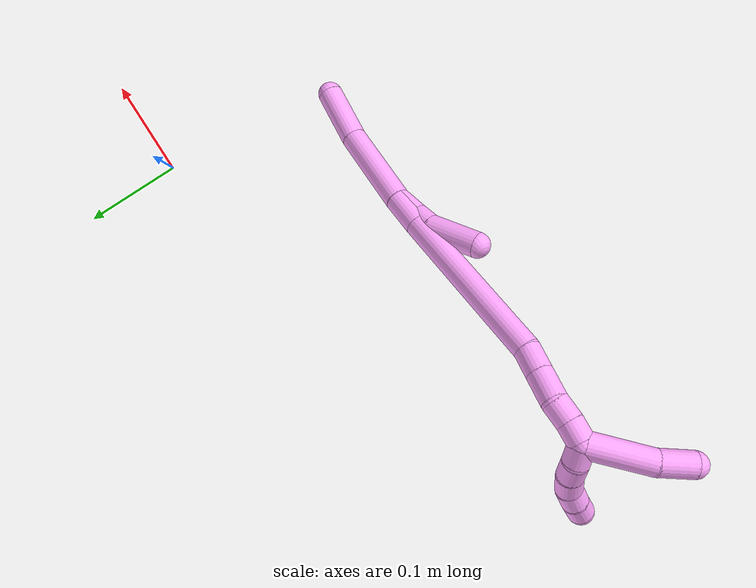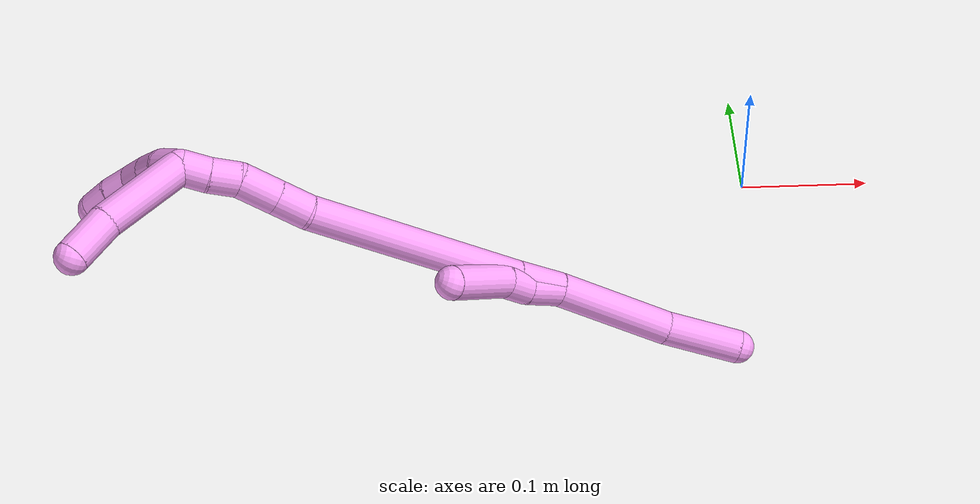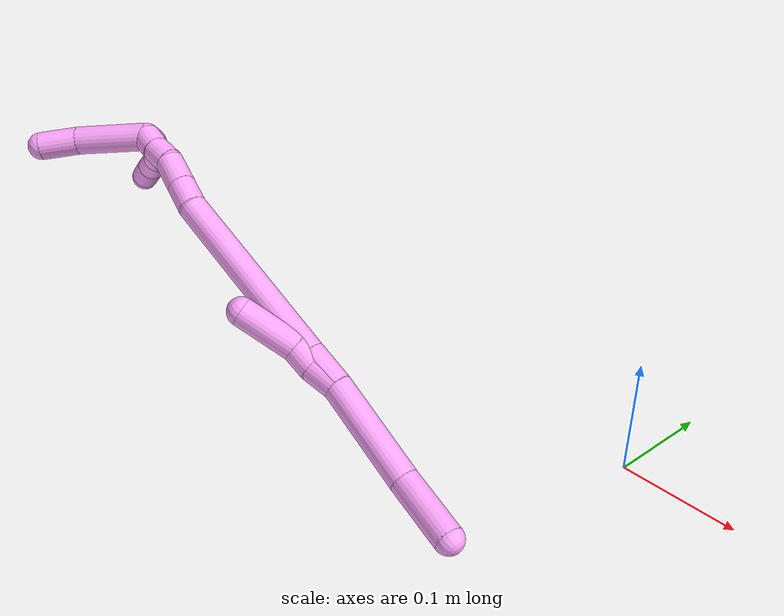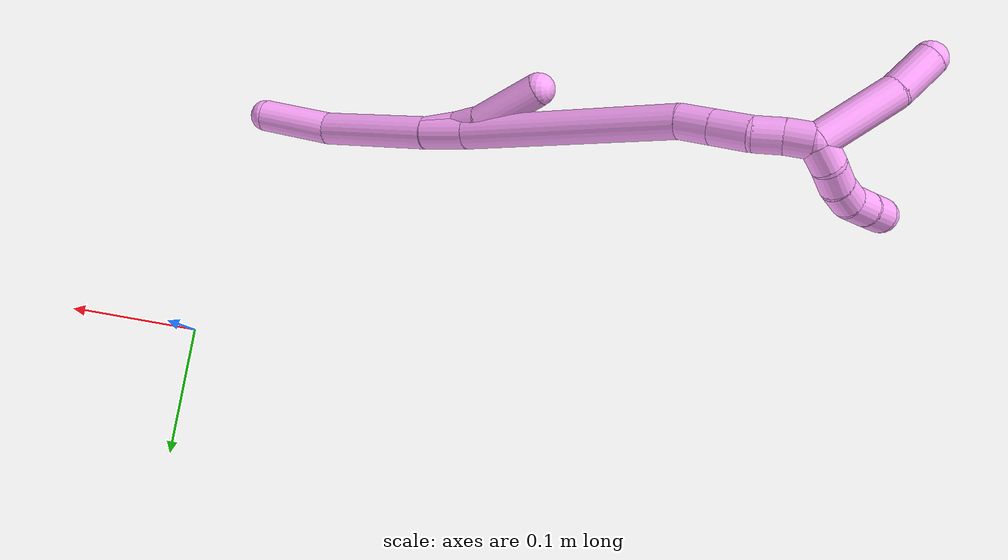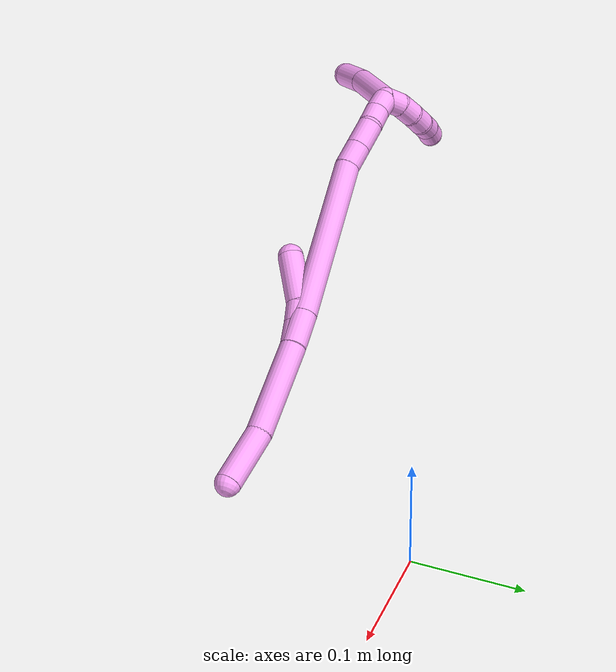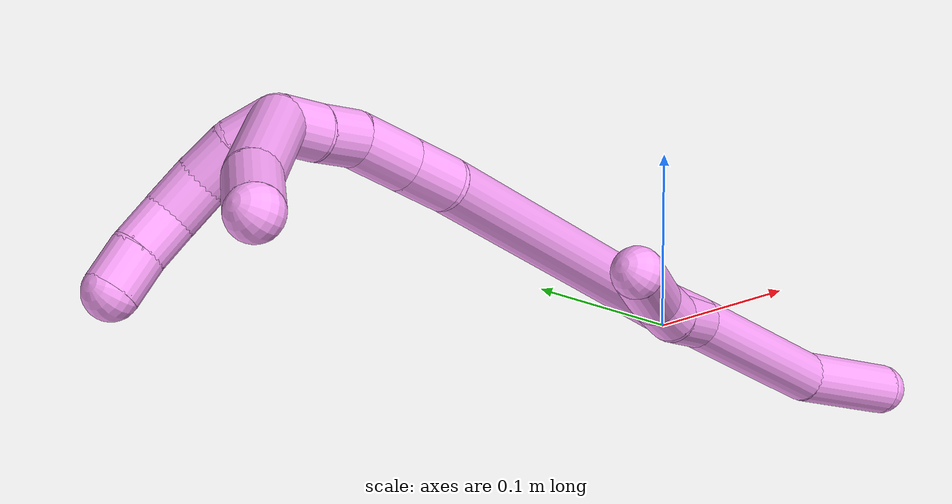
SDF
<sdf version="1.7">
 <world name="default">
  <model name="4">
   <static>0</static>
   <link name="4">
    <collision name="collision-cylinder-e_1_2_8">
     <pose>0.00142 -0.001955 -0.046011 3.09912 0.030832 1.25586</pose>
     <geometry><cylinder><radius>0.0125</radius><length>0.092149</length></cylinder></geometry>
     <surface>
      <friction><ode><mu>1.16</mu><mu2>1.16</mu2><slip1>0</slip1><slip2>0</slip2></ode></friction>
      <contact><ode><kp>1e+06</kp><kd>1</kd><max_vel>0</max_vel><min_depth>0.001</min_depth></ode></contact>
     </surface>
    </collision>
    <visual name="visual-cylinder-e_1_2_8">
     <pose>0.00142 -0.001955 -0.046011 3.09912 0.030832 1.25586</pose>
     <geometry><cylinder><radius>0.0125</radius><length>0.092149</length></cylinder></geometry>
     <material><ambient>1 0.65098 0.996078 1</ambient></material>
    </visual>
    <collision name="collision-cylinder-e_2_8_6">
     <pose>0.009632 -0.002646 -0.120111 -3.09662 0.23701 -2.76824</pose>
     <geometry><cylinder><radius>0.0125</radius><length>0.057851</length></cylinder></geometry>
     <surface>
      <friction><ode><mu>1.16</mu><mu2>1.16</mu2><slip1>0</slip1><slip2>0</slip2></ode></friction>
      <contact><ode><kp>1e+06</kp><kd>1</kd><max_vel>0</max_vel><min_depth>0.001</min_depth></ode></contact>
     </surface>
    </collision>
    <visual name="visual-cylinder-e_2_8_6">
     <pose>0.009632 -0.002646 -0.120111 -3.09662 0.23701 -2.76824</pose>
     <geometry><cylinder><radius>0.0125</radius><length>0.057851</length></cylinder></geometry>
     <material><ambient>1 0.65098 0.996078 1</ambient></material>
    </visual>
    <collision name="collision-cylinder-e_1_2_9">
     <pose>0.000574 -0.002991 0.012749 0.230468 0.043839 0.005075</pose>
     <geometry><cylinder><radius>0.0125</radius><length>0.026216</length></cylinder></geometry>
     <surface>
      <friction><ode><mu>1.16</mu><mu2>1.16</mu2><slip1>0</slip1><slip2>0</slip2></ode></friction>
      <contact><ode><kp>1e+06</kp><kd>1</kd><max_vel>0</max_vel><min_depth>0.001</min_depth></ode></contact>
     </surface>
    </collision>
    <visual name="visual-cylinder-e_1_2_9">
     <pose>0.000574 -0.002991 0.012749 0.230468 0.043839 0.005075</pose>
     <geometry><cylinder><radius>0.0125</radius><length>0.026216</length></cylinder></geometry>
     <material><ambient>1 0.65098 0.996078 1</ambient></material>
    </visual>
    <collision name="collision-cylinder-e_2_9_10">
     <pose>0.003338 -0.00594 0.035855 -0.004108 0.208288 -0.000429</pose>
     <geometry><cylinder><radius>0.0125</radius><length>0.021172</length></cylinder></geometry>
     <surface>
      <friction><ode><mu>1.16</mu><mu2>1.16</mu2><slip1>0</slip1><slip2>0</slip2></ode></friction>
      <contact><ode><kp>1e+06</kp><kd>1</kd><max_vel>0</max_vel><min_depth>0.001</min_depth></ode></contact>
     </surface>
    </collision>
    <visual name="visual-cylinder-e_2_9_10">
     <pose>0.003338 -0.00594 0.035855 -0.004108 0.208288 -0.000429</pose>
     <geometry><cylinder><radius>0.0125</radius><length>0.021172</length></cylinder></geometry>
     <material><ambient>1 0.65098 0.996078 1</ambient></material>
    </visual>
    <collision name="collision-cylinder-e_3_10_5">
     <pose>0.015367 -0.012011 0.06983 0.253291 0.383385 0.049412</pose>
     <geometry><cylinder><radius>0.0125</radius><length>0.052612</length></cylinder></geometry>
     <surface>
      <friction><ode><mu>1.16</mu><mu2>1.16</mu2><slip1>0</slip1><slip2>0</slip2></ode></friction>
      <contact><ode><kp>1e+06</kp><kd>1</kd><max_vel>0</max_vel><min_depth>0.001</min_depth></ode></contact>
     </surface>
    </collision>
    <visual name="visual-cylinder-e_3_10_5">
     <pose>0.015367 -0.012011 0.06983 0.253291 0.383385 0.049412</pose>
     <geometry><cylinder><radius>0.0125</radius><length>0.052612</length></cylinder></geometry>
     <material><ambient>1 0.65098 0.996078 1</ambient></material>
    </visual>
    <collision name="collision-cylinder-e_1_2_11">
     <pose>-0.000282 -0.000469 0.017835 0.026275 -0.015799 -0.000208</pose>
     <geometry><cylinder><radius>0.0125</radius><length>0.035687</length></cylinder></geometry>
     <surface>
      <friction><ode><mu>1.16</mu><mu2>1.16</mu2><slip1>0</slip1><slip2>0</slip2></ode></friction>
      <contact><ode><kp>1e+06</kp><kd>1</kd><max_vel>0</max_vel><min_depth>0.001</min_depth></ode></contact>
     </surface>
    </collision>
    <visual name="visual-cylinder-e_1_2_11">
     <pose>-0.000282 -0.000469 0.017835 0.026275 -0.015799 -0.000208</pose>
     <geometry><cylinder><radius>0.0125</radius><length>0.035687</length></cylinder></geometry>
     <material><ambient>1 0.65098 0.996078 1</ambient></material>
    </visual>
    <collision name="collision-cylinder-e_2_11_12">
     <pose>0.002994 -0.000865 0.120218 -0.000858 0.04206 -1.8e-05</pose>
     <geometry><cylinder><radius>0.0125</radius><length>0.169244</length></cylinder></geometry>
     <surface>
      <friction><ode><mu>1.16</mu><mu2>1.16</mu2><slip1>0</slip1><slip2>0</slip2></ode></friction>
      <contact><ode><kp>1e+06</kp><kd>1</kd><max_vel>0</max_vel><min_depth>0.001</min_depth></ode></contact>
     </surface>
    </collision>
    <visual name="visual-cylinder-e_2_11_12">
     <pose>0.002994 -0.000865 0.120218 -0.000858 0.04206 -1.8e-05</pose>
     <geometry><cylinder><radius>0.0125</radius><length>0.169244</length></cylinder></geometry>
     <material><ambient>1 0.65098 0.996078 1</ambient></material>
    </visual>
    <collision name="collision-cylinder-e_3_12_13">
     <pose>0.005004 0.000887 0.217001 -0.136423 -0.124732 0.008532</pose>
     <geometry><cylinder><radius>0.0125</radius><length>0.024896</length></cylinder></geometry>
     <surface>
      <friction><ode><mu>1.16</mu><mu2>1.16</mu2><slip1>0</slip1><slip2>0</slip2></ode></friction>
      <contact><ode><kp>1e+06</kp><kd>1</kd><max_vel>0</max_vel><min_depth>0.001</min_depth></ode></contact>
     </surface>
    </collision>
    <visual name="visual-cylinder-e_3_12_13">
     <pose>0.005004 0.000887 0.217001 -0.136423 -0.124732 0.008532</pose>
     <geometry><cylinder><radius>0.0125</radius><length>0.024896</length></cylinder></geometry>
     <material><ambient>1 0.65098 0.996078 1</ambient></material>
    </visual>
    <collision name="collision-cylinder-e_4_13_14">
     <pose>0.001695 0.004485 0.243214 -0.136397 -0.124145 0.00849</pose>
     <geometry><cylinder><radius>0.0125</radius><length>0.028434</length></cylinder></geometry>
     <surface>
      <friction><ode><mu>1.16</mu><mu2>1.16</mu2><slip1>0</slip1><slip2>0</slip2></ode></friction>
      <contact><ode><kp>1e+06</kp><kd>1</kd><max_vel>0</max_vel><min_depth>0.001</min_depth></ode></contact>
     </surface>
    </collision>
    <visual name="visual-cylinder-e_4_13_14">
     <pose>0.001695 0.004485 0.243214 -0.136397 -0.124145 0.00849</pose>
     <geometry><cylinder><radius>0.0125</radius><length>0.028434</length></cylinder></geometry>
     <material><ambient>1 0.65098 0.996078 1</ambient></material>
    </visual>
    <collision name="collision-cylinder-e_5_14_15">
     <pose>-0.001798 0.004798 0.267603 0.15304 -0.162928 -0.012519</pose>
     <geometry><cylinder><radius>0.0125</radius><length>0.021355</length></cylinder></geometry>
     <surface>
      <friction><ode><mu>1.16</mu><mu2>1.16</mu2><slip1>0</slip1><slip2>0</slip2></ode></friction>
      <contact><ode><kp>1e+06</kp><kd>1</kd><max_vel>0</max_vel><min_depth>0.001</min_depth></ode></contact>
     </surface>
    </collision>
    <visual name="visual-cylinder-e_5_14_15">
     <pose>-0.001798 0.004798 0.267603 0.15304 -0.162928 -0.012519</pose>
     <geometry><cylinder><radius>0.0125</radius><length>0.021355</length></cylinder></geometry>
     <material><ambient>1 0.65098 0.996078 1</ambient></material>
    </visual>
    <collision name="collision-cylinder-e_6_15_1">
     <pose>-0.005664 0.002875 0.287977 0.031775 -0.210955 -0.003364</pose>
     <geometry><cylinder><radius>0.0125</radius><length>0.020385</length></cylinder></geometry>
     <surface>
      <friction><ode><mu>1.16</mu><mu2>1.16</mu2><slip1>0</slip1><slip2>0</slip2></ode></friction>
      <contact><ode><kp>1e+06</kp><kd>1</kd><max_vel>0</max_vel><min_depth>0.001</min_depth></ode></contact>
     </surface>
    </collision>
    <visual name="visual-cylinder-e_6_15_1">
     <pose>-0.005664 0.002875 0.287977 0.031775 -0.210955 -0.003364</pose>
     <geometry><cylinder><radius>0.0125</radius><length>0.020385</length></cylinder></geometry>
     <material><ambient>1 0.65098 0.996078 1</ambient></material>
    </visual>
    <collision name="collision-cylinder-e_1_1_16">
     <pose>-0.002165 -0.022247 0.318403 0.88098 0.173408 0.081901</pose>
     <geometry><cylinder><radius>0.0125</radius><length>0.065293</length></cylinder></geometry>
     <surface>
      <friction><ode><mu>1.16</mu><mu2>1.16</mu2><slip1>0</slip1><slip2>0</slip2></ode></friction>
      <contact><ode><kp>1e+06</kp><kd>1</kd><max_vel>0</max_vel><min_depth>0.001</min_depth></ode></contact>
     </surface>
    </collision>
    <visual name="visual-cylinder-e_1_1_16">
     <pose>-0.002165 -0.022247 0.318403 0.88098 0.173408 0.081901</pose>
     <geometry><cylinder><radius>0.0125</radius><length>0.065293</length></cylinder></geometry>
     <material><ambient>1 0.65098 0.996078 1</ambient></material>
    </visual>
    <collision name="collision-cylinder-e_2_16_4">
     <pose>0.008463 -0.061265 0.34748 1.02604 0.291958 0.165269</pose>
     <geometry><cylinder><radius>0.0125</radius><length>0.034707</length></cylinder></geometry>
     <surface>
      <friction><ode><mu>1.16</mu><mu2>1.16</mu2><slip1>0</slip1><slip2>0</slip2></ode></friction>
      <contact><ode><kp>1e+06</kp><kd>1</kd><max_vel>0</max_vel><min_depth>0.001</min_depth></ode></contact>
     </surface>
    </collision>
    <visual name="visual-cylinder-e_2_16_4">
     <pose>0.008463 -0.061265 0.34748 1.02604 0.291958 0.165269</pose>
     <geometry><cylinder><radius>0.0125</radius><length>0.034707</length></cylinder></geometry>
     <material><ambient>1 0.65098 0.996078 1</ambient></material>
    </visual>
    <collision name="collision-cylinder-e_1_1_17">
     <pose>-0.017333 0.001198 0.300629 0.468042 -1.26454 -0.3458</pose>
     <geometry><cylinder><radius>0.0125</radius><length>0.02</length></cylinder></geometry>
     <surface>
      <friction><ode><mu>1.16</mu><mu2>1.16</mu2><slip1>0</slip1><slip2>0</slip2></ode></friction>
      <contact><ode><kp>1e+06</kp><kd>1</kd><max_vel>0</max_vel><min_depth>0.001</min_depth></ode></contact>
     </surface>
    </collision>
    <visual name="visual-cylinder-e_1_1_17">
     <pose>-0.017333 0.001198 0.300629 0.468042 -1.26454 -0.3458</pose>
     <geometry><cylinder><radius>0.0125</radius><length>0.02</length></cylinder></geometry>
     <material><ambient>1 0.65098 0.996078 1</ambient></material>
    </visual>
    <collision name="collision-cylinder-e_2_17_18">
     <pose>-0.036253 -0.003433 0.304424 1.24539 -1.21835 -0.928782</pose>
     <geometry><cylinder><radius>0.0125</radius><length>0.02</length></cylinder></geometry>
     <surface>
      <friction><ode><mu>1.16</mu><mu2>1.16</mu2><slip1>0</slip1><slip2>0</slip2></ode></friction>
      <contact><ode><kp>1e+06</kp><kd>1</kd><max_vel>0</max_vel><min_depth>0.001</min_depth></ode></contact>
     </surface>
    </collision>
    <visual name="visual-cylinder-e_2_17_18">
     <pose>-0.036253 -0.003433 0.304424 1.24539 -1.21835 -0.928782</pose>
     <geometry><cylinder><radius>0.0125</radius><length>0.02</length></cylinder></geometry>
     <material><ambient>1 0.65098 0.996078 1</ambient></material>
    </visual>
    <collision name="collision-cylinder-e_3_18_19">
     <pose>-0.054171 -0.011528 0.307505 1.18165 -1.02235 -0.719693</pose>
     <geometry><cylinder><radius>0.0125</radius><length>0.02</length></cylinder></geometry>
     <surface>
      <friction><ode><mu>1.16</mu><mu2>1.16</mu2><slip1>0</slip1><slip2>0</slip2></ode></friction>
      <contact><ode><kp>1e+06</kp><kd>1</kd><max_vel>0</max_vel><min_depth>0.001</min_depth></ode></contact>
     </surface>
    </collision>
    <visual name="visual-cylinder-e_3_18_19">
     <pose>-0.054171 -0.011528 0.307505 1.18165 -1.02235 -0.719693</pose>
     <geometry><cylinder><radius>0.0125</radius><length>0.02</length></cylinder></geometry>
     <material><ambient>1 0.65098 0.996078 1</ambient></material>
    </visual>
    <collision name="collision-cylinder-e_4_19_20">
     <pose>-0.06932 -0.022766 0.313367 1.02638 -0.722888 -0.419829</pose>
     <geometry><cylinder><radius>0.0125</radius><length>0.02</length></cylinder></geometry>
     <surface>
      <friction><ode><mu>1.16</mu><mu2>1.16</mu2><slip1>0</slip1><slip2>0</slip2></ode></friction>
      <contact><ode><kp>1e+06</kp><kd>1</kd><max_vel>0</max_vel><min_depth>0.001</min_depth></ode></contact>
     </surface>
    </collision>
    <visual name="visual-cylinder-e_4_19_20">
     <pose>-0.06932 -0.022766 0.313367 1.02638 -0.722888 -0.419829</pose>
     <geometry><cylinder><radius>0.0125</radius><length>0.02</length></cylinder></geometry>
     <material><ambient>1 0.65098 0.996078 1</ambient></material>
    </visual>
    <collision name="collision-cylinder-e_5_20_3">
     <pose>-0.082355 -0.036269 0.320176 1.17942 -0.696941 -0.47694</pose>
     <geometry><cylinder><radius>0.0125</radius><length>0.02</length></cylinder></geometry>
     <surface>
      <friction><ode><mu>1.16</mu><mu2>1.16</mu2><slip1>0</slip1><slip2>0</slip2></ode></friction>
      <contact><ode><kp>1e+06</kp><kd>1</kd><max_vel>0</max_vel><min_depth>0.001</min_depth></ode></contact>
     </surface>
    </collision>
    <visual name="visual-cylinder-e_5_20_3">
     <pose>-0.082355 -0.036269 0.320176 1.17942 -0.696941 -0.47694</pose>
     <geometry><cylinder><radius>0.0125</radius><length>0.02</length></cylinder></geometry>
     <material><ambient>1 0.65098 0.996078 1</ambient></material>
    </visual>
    <collision name="collision-sphere-3">
     <pose>-0.088773 -0.043358 0.323101 0 -0 0</pose>
     <geometry><sphere><radius>0.0125</radius></sphere></geometry>
     <surface>
      <friction><ode><mu>1.16</mu><mu2>1.16</mu2><slip1>0</slip1><slip2>0</slip2></ode></friction>
      <contact><ode><kp>1e+06</kp><kd>1</kd><max_vel>0</max_vel><min_depth>0.001</min_depth></ode></contact>
     </surface>
    </collision>
    <visual name="visual-sphere-3">
     <pose>-0.088773 -0.043358 0.323101 0 -0 0</pose>
     <geometry><sphere><radius>0.0125</radius></sphere></geometry>
     <material><ambient>1 0.65098 0.996078 1</ambient></material>
    </visual>
    <collision name="collision-sphere-20">
     <pose>-0.075936 -0.029181 0.317251 0 -0 0</pose>
     <geometry><sphere><radius>0.0125</radius></sphere></geometry>
     <surface>
      <friction><ode><mu>1.16</mu><mu2>1.16</mu2><slip1>0</slip1><slip2>0</slip2></ode></friction>
      <contact><ode><kp>1e+06</kp><kd>1</kd><max_vel>0</max_vel><min_depth>0.001</min_depth></ode></contact>
     </surface>
    </collision>
    <visual name="visual-sphere-20">
     <pose>-0.075936 -0.029181 0.317251 0 -0 0</pose>
     <geometry><sphere><radius>0.0125</radius></sphere></geometry>
     <material><ambient>1 0.65098 0.996078 1</ambient></material>
    </visual>
    <collision name="collision-sphere-19">
     <pose>-0.062705 -0.016351 0.309483 0 -0 0</pose>
     <geometry><sphere><radius>0.0125</radius></sphere></geometry>
     <surface>
      <friction><ode><mu>1.16</mu><mu2>1.16</mu2><slip1>0</slip1><slip2>0</slip2></ode></friction>
      <contact><ode><kp>1e+06</kp><kd>1</kd><max_vel>0</max_vel><min_depth>0.001</min_depth></ode></contact>
     </surface>
    </collision>
    <visual name="visual-sphere-19">
     <pose>-0.062705 -0.016351 0.309483 0 -0 0</pose>
     <geometry><sphere><radius>0.0125</radius></sphere></geometry>
     <material><ambient>1 0.65098 0.996078 1</ambient></material>
    </visual>
    <collision name="collision-sphere-5">
     <pose>0.025207 -0.018125 0.093448 0 -0 0</pose>
     <geometry><sphere><radius>0.0125</radius></sphere></geometry>
     <surface>
      <friction><ode><mu>1.16</mu><mu2>1.16</mu2><slip1>0</slip1><slip2>0</slip2></ode></friction>
      <contact><ode><kp>1e+06</kp><kd>1</kd><max_vel>0</max_vel><min_depth>0.001</min_depth></ode></contact>
     </surface>
    </collision>
    <visual name="visual-sphere-5">
     <pose>0.025207 -0.018125 0.093448 0 -0 0</pose>
     <geometry><sphere><radius>0.0125</radius></sphere></geometry>
     <material><ambient>1 0.65098 0.996078 1</ambient></material>
    </visual>
    <collision name="collision-sphere-10">
     <pose>0.005527 -0.005898 0.046213 0 -0 0</pose>
     <geometry><sphere><radius>0.0125</radius></sphere></geometry>
     <surface>
      <friction><ode><mu>1.16</mu><mu2>1.16</mu2><slip1>0</slip1><slip2>0</slip2></ode></friction>
      <contact><ode><kp>1e+06</kp><kd>1</kd><max_vel>0</max_vel><min_depth>0.001</min_depth></ode></contact>
     </surface>
    </collision>
    <visual name="visual-sphere-10">
     <pose>0.005527 -0.005898 0.046213 0 -0 0</pose>
     <geometry><sphere><radius>0.0125</radius></sphere></geometry>
     <material><ambient>1 0.65098 0.996078 1</ambient></material>
    </visual>
    <collision name="collision-sphere-6">
     <pose>0.016424 -0.001382 -0.148199 0 -0 0</pose>
     <geometry><sphere><radius>0.0125</radius></sphere></geometry>
     <surface>
      <friction><ode><mu>1.16</mu><mu2>1.16</mu2><slip1>0</slip1><slip2>0</slip2></ode></friction>
      <contact><ode><kp>1e+06</kp><kd>1</kd><max_vel>0</max_vel><min_depth>0.001</min_depth></ode></contact>
     </surface>
    </collision>
    <visual name="visual-sphere-6">
     <pose>0.016424 -0.001382 -0.148199 0 -0 0</pose>
     <geometry><sphere><radius>0.0125</radius></sphere></geometry>
     <material><ambient>1 0.65098 0.996078 1</ambient></material>
    </visual>
    <collision name="collision-sphere-9">
     <pose>0.001149 -0.005983 0.025498 0 -0 0</pose>
     <geometry><sphere><radius>0.0125</radius></sphere></geometry>
     <surface>
      <friction><ode><mu>1.16</mu><mu2>1.16</mu2><slip1>0</slip1><slip2>0</slip2></ode></friction>
      <contact><ode><kp>1e+06</kp><kd>1</kd><max_vel>0</max_vel><min_depth>0.001</min_depth></ode></contact>
     </surface>
    </collision>
    <visual name="visual-sphere-9">
     <pose>0.001149 -0.005983 0.025498 0 -0 0</pose>
     <geometry><sphere><radius>0.0125</radius></sphere></geometry>
     <material><ambient>1 0.65098 0.996078 1</ambient></material>
    </visual>
    <collision name="collision-sphere-2">
     <geometry><sphere><radius>0.0125</radius></sphere></geometry>
     <surface>
      <friction><ode><mu>1.16</mu><mu2>1.16</mu2><slip1>0</slip1><slip2>0</slip2></ode></friction>
      <contact><ode><kp>1e+06</kp><kd>1</kd><max_vel>0</max_vel><min_depth>0.001</min_depth></ode></contact>
     </surface>
    </collision>
    <visual name="visual-sphere-2">
     <geometry><sphere><radius>0.0125</radius></sphere></geometry>
     <material><ambient>1 0.65098 0.996078 1</ambient></material>
    </visual>
    <collision name="collision-sphere-8">
     <pose>0.002841 -0.00391 -0.092022 0 -0 0</pose>
     <geometry><sphere><radius>0.0125</radius></sphere></geometry>
     <surface>
      <friction><ode><mu>1.16</mu><mu2>1.16</mu2><slip1>0</slip1><slip2>0</slip2></ode></friction>
      <contact><ode><kp>1e+06</kp><kd>1</kd><max_vel>0</max_vel><min_depth>0.001</min_depth></ode></contact>
     </surface>
    </collision>
    <visual name="visual-sphere-8">
     <pose>0.002841 -0.00391 -0.092022 0 -0 0</pose>
     <geometry><sphere><radius>0.0125</radius></sphere></geometry>
     <material><ambient>1 0.65098 0.996078 1</ambient></material>
    </visual>
    <collision name="collision-sphere-11">
     <pose>-0.000564 -0.000937 0.035671 0 -0 0</pose>
     <geometry><sphere><radius>0.0125</radius></sphere></geometry>
     <surface>
      <friction><ode><mu>1.16</mu><mu2>1.16</mu2><slip1>0</slip1><slip2>0</slip2></ode></friction>
      <contact><ode><kp>1e+06</kp><kd>1</kd><max_vel>0</max_vel><min_depth>0.001</min_depth></ode></contact>
     </surface>
    </collision>
    <visual name="visual-sphere-11">
     <pose>-0.000564 -0.000937 0.035671 0 -0 0</pose>
     <geometry><sphere><radius>0.0125</radius></sphere></geometry>
     <material><ambient>1 0.65098 0.996078 1</ambient></material>
    </visual>
    <collision name="collision-sphere-12">
     <pose>0.006552 -0.000792 0.204765 0 -0 0</pose>
     <geometry><sphere><radius>0.0125</radius></sphere></geometry>
     <surface>
      <friction><ode><mu>1.16</mu><mu2>1.16</mu2><slip1>0</slip1><slip2>0</slip2></ode></friction>
      <contact><ode><kp>1e+06</kp><kd>1</kd><max_vel>0</max_vel><min_depth>0.001</min_depth></ode></contact>
     </surface>
    </collision>
    <visual name="visual-sphere-12">
     <pose>0.006552 -0.000792 0.204765 0 -0 0</pose>
     <geometry><sphere><radius>0.0125</radius></sphere></geometry>
     <material><ambient>1 0.65098 0.996078 1</ambient></material>
    </visual>
    <collision name="collision-sphere-13">
     <pose>0.003455 0.002567 0.229238 0 -0 0</pose>
     <geometry><sphere><radius>0.0125</radius></sphere></geometry>
     <surface>
      <friction><ode><mu>1.16</mu><mu2>1.16</mu2><slip1>0</slip1><slip2>0</slip2></ode></friction>
      <contact><ode><kp>1e+06</kp><kd>1</kd><max_vel>0</max_vel><min_depth>0.001</min_depth></ode></contact>
     </surface>
    </collision>
    <visual name="visual-sphere-13">
     <pose>0.003455 0.002567 0.229238 0 -0 0</pose>
     <geometry><sphere><radius>0.0125</radius></sphere></geometry>
     <material><ambient>1 0.65098 0.996078 1</ambient></material>
    </visual>
    <collision name="collision-sphere-14">
     <pose>-6.6e-05 0.006404 0.257191 0 -0 0</pose>
     <geometry><sphere><radius>0.0125</radius></sphere></geometry>
     <surface>
      <friction><ode><mu>1.16</mu><mu2>1.16</mu2><slip1>0</slip1><slip2>0</slip2></ode></friction>
      <contact><ode><kp>1e+06</kp><kd>1</kd><max_vel>0</max_vel><min_depth>0.001</min_depth></ode></contact>
     </surface>
    </collision>
    <visual name="visual-sphere-14">
     <pose>-6.6e-05 0.006404 0.257191 0 -0 0</pose>
     <geometry><sphere><radius>0.0125</radius></sphere></geometry>
     <material><ambient>1 0.65098 0.996078 1</ambient></material>
    </visual>
    <collision name="collision-sphere-15">
     <pose>-0.00353 0.003191 0.278016 0 -0 0</pose>
     <geometry><sphere><radius>0.0125</radius></sphere></geometry>
     <surface>
      <friction><ode><mu>1.16</mu><mu2>1.16</mu2><slip1>0</slip1><slip2>0</slip2></ode></friction>
      <contact><ode><kp>1e+06</kp><kd>1</kd><max_vel>0</max_vel><min_depth>0.001</min_depth></ode></contact>
     </surface>
    </collision>
    <visual name="visual-sphere-15">
     <pose>-0.00353 0.003191 0.278016 0 -0 0</pose>
     <geometry><sphere><radius>0.0125</radius></sphere></geometry>
     <material><ambient>1 0.65098 0.996078 1</ambient></material>
    </visual>
    <collision name="collision-sphere-1">
     <pose>-0.007798 0.002558 0.297939 0 -0 0</pose>
     <geometry><sphere><radius>0.0125</radius></sphere></geometry>
     <surface>
      <friction><ode><mu>1.16</mu><mu2>1.16</mu2><slip1>0</slip1><slip2>0</slip2></ode></friction>
      <contact><ode><kp>1e+06</kp><kd>1</kd><max_vel>0</max_vel><min_depth>0.001</min_depth></ode></contact>
     </surface>
    </collision>
    <visual name="visual-sphere-1">
     <pose>-0.007798 0.002558 0.297939 0 -0 0</pose>
     <geometry><sphere><radius>0.0125</radius></sphere></geometry>
     <material><ambient>1 0.65098 0.996078 1</ambient></material>
    </visual>
    <collision name="collision-sphere-18">
     <pose>-0.045638 -0.006704 0.305527 0 -0 0</pose>
     <geometry><sphere><radius>0.0125</radius></sphere></geometry>
     <surface>
      <friction><ode><mu>1.16</mu><mu2>1.16</mu2><slip1>0</slip1><slip2>0</slip2></ode></friction>
      <contact><ode><kp>1e+06</kp><kd>1</kd><max_vel>0</max_vel><min_depth>0.001</min_depth></ode></contact>
     </surface>
    </collision>
    <visual name="visual-sphere-18">
     <pose>-0.045638 -0.006704 0.305527 0 -0 0</pose>
     <geometry><sphere><radius>0.0125</radius></sphere></geometry>
     <material><ambient>1 0.65098 0.996078 1</ambient></material>
    </visual>
    <collision name="collision-sphere-16">
     <pose>0.003468 -0.047051 0.338868 0 -0 0</pose>
     <geometry><sphere><radius>0.0125</radius></sphere></geometry>
     <surface>
      <friction><ode><mu>1.16</mu><mu2>1.16</mu2><slip1>0</slip1><slip2>0</slip2></ode></friction>
      <contact><ode><kp>1e+06</kp><kd>1</kd><max_vel>0</max_vel><min_depth>0.001</min_depth></ode></contact>
     </surface>
    </collision>
    <visual name="visual-sphere-16">
     <pose>0.003468 -0.047051 0.338868 0 -0 0</pose>
     <geometry><sphere><radius>0.0125</radius></sphere></geometry>
     <material><ambient>1 0.65098 0.996078 1</ambient></material>
    </visual>
    <collision name="collision-sphere-4">
     <pose>0.013457 -0.075478 0.356092 0 -0 0</pose>
     <geometry><sphere><radius>0.0125</radius></sphere></geometry>
     <surface>
      <friction><ode><mu>1.16</mu><mu2>1.16</mu2><slip1>0</slip1><slip2>0</slip2></ode></friction>
      <contact><ode><kp>1e+06</kp><kd>1</kd><max_vel>0</max_vel><min_depth>0.001</min_depth></ode></contact>
     </surface>
    </collision>
    <visual name="visual-sphere-4">
     <pose>0.013457 -0.075478 0.356092 0 -0 0</pose>
     <geometry><sphere><radius>0.0125</radius></sphere></geometry>
     <material><ambient>1 0.65098 0.996078 1</ambient></material>
    </visual>
    <collision name="collision-sphere-17">
     <pose>-0.026867 -0.000162 0.30332 0 -0 0</pose>
     <geometry><sphere><radius>0.0125</radius></sphere></geometry>
     <surface>
      <friction><ode><mu>1.16</mu><mu2>1.16</mu2><slip1>0</slip1><slip2>0</slip2></ode></friction>
      <contact><ode><kp>1e+06</kp><kd>1</kd><max_vel>0</max_vel><min_depth>0.001</min_depth></ode></contact>
     </surface>
    </collision>
    <visual name="visual-sphere-17">
     <pose>-0.026867 -0.000162 0.30332 0 -0 0</pose>
     <geometry><sphere><radius>0.0125</radius></sphere></geometry>
     <material><ambient>1 0.65098 0.996078 1</ambient></material>
    </visual>
    <inertial>
     <pose>-0.003918 -0.008076 0.136314 0 -0 0</pose>
     <mass>0.75</mass>
     <inertia><ixx>0.000537</ixx><ixy>0</ixy><ixz>0</ixz><iyy>0.000512</iyy><iyz>0</iyz><izz>3e-05</izz></inertia>
    </inertial>
   </link>
   <pose>-0.160054 -0.176592 0.076303 0.931655 -0.606497 -1.10945</pose>
  </model>
 </world>
</sdf>
